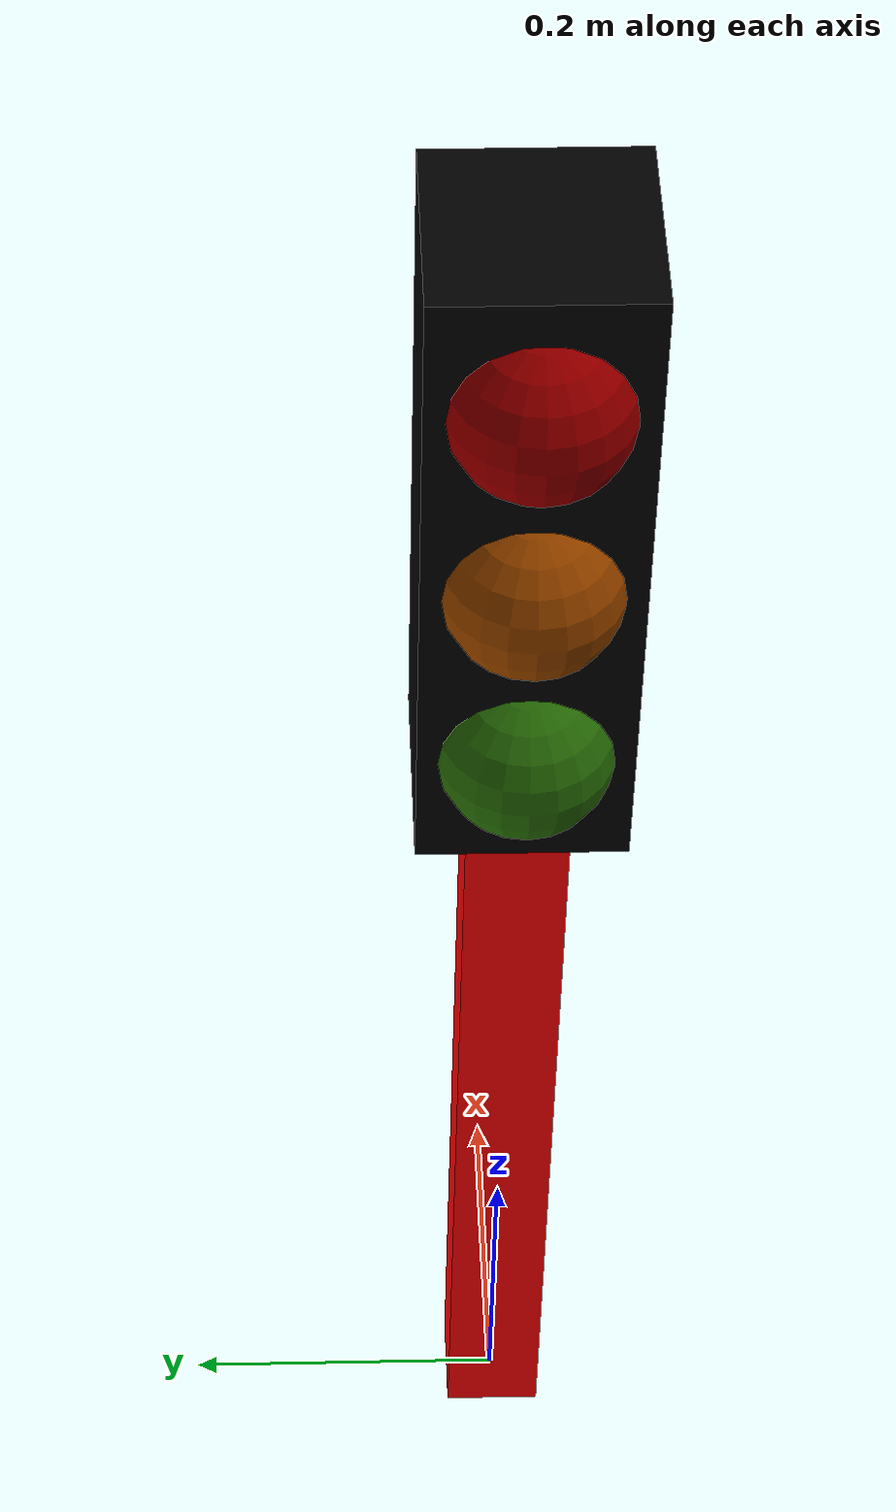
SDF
<?xml version='1.0'?>
<sdf version='1.6'>
  <model name='traffic_light'>
<static>True</static>
    <link name='base_link'>
      <inertial>
        <mass>100</mass>
        <inertia>
          <ixx>0.166667</ixx>
          <ixy>0</ixy>
          <ixz>0</ixz>
          <iyy>0.166667</iyy>
          <iyz>0</iyz>
          <izz>0.166667</izz>
        </inertia>
      </inertial>
      <pose frame=''>0 -2e-06 0 0 -0 0</pose>
      <visual name='visual'>
        <pose frame=''>0 0 0.3 0 -0 0</pose>
       <geometry>
          <box>
           <size>0.06 0.06 0.6</size>
          </box>
        </geometry>
  <material>
    <ambient>0.3607 0.2 0.0901 1</ambient>
    <diffuse>1 0 0 1</diffuse>
    <specular>0.1 0.1 0.1 1</specular>
    <emissive>0 0 0 0</emissive>
  </material>
        <transparency>0</transparency>
        <cast_shadows>1</cast_shadows>
      </visual>
      <collision name='collision'>
        <laser_retro>0</laser_retro>
        <max_contacts>10</max_contacts>
        <pose frame=''>0 0 0.6 0 -0 0</pose>
       <geometry>
          <box>
            <size>0.06 0.06 0.6</size>
          </box>
        </geometry>

        <surface>
          <friction>
            <ode>
              <mu>1</mu>
              <mu2>1</mu2>
              <fdir1>0 0 0</fdir1>
              <slip1>0</slip1>
              <slip2>0</slip2>
            </ode>
            <torsional>
              <coefficient>1</coefficient>
              <patch_radius>0</patch_radius>
              <surface_radius>0</surface_radius>
              <use_patch_radius>1</use_patch_radius>
              <ode>
                <slip>0</slip>
              </ode>
            </torsional>
          </friction>
          <bounce>
            <restitution_coefficient>0</restitution_coefficient>
            <threshold>1e+06</threshold>
          </bounce>
          <contact>
            <collide_without_contact>0</collide_without_contact>
            <collide_without_contact_bitmask>1</collide_without_contact_bitmask>
            <collide_bitmask>1</collide_bitmask>
            <ode>
              <soft_cfm>0</soft_cfm>
              <soft_erp>0.2</soft_erp>
              <kp>1e+13</kp>
              <kd>1</kd>
              <max_vel>0.01</max_vel>
              <min_depth>0</min_depth>
            </ode>
            <bullet>
              <split_impulse>1</split_impulse>
              <split_impulse_penetration_threshold>-0.01</split_impulse_penetration_threshold>
              <soft_cfm>0</soft_cfm>
              <soft_erp>0.2</soft_erp>
              <kp>1e+13</kp>
              <kd>1</kd>
            </bullet>
          </contact>
        </surface>
      </collision>
    </link>
<link name='traffic_light'>
      <inertial>
        <mass>100</mass>
        <inertia>
          <ixx>0.166667</ixx>
          <ixy>0</ixy>
          <ixz>0</ixz>
          <iyy>0.166667</iyy>
          <iyz>0</iyz>
          <izz>0.166667</izz>
        </inertia>
      </inertial>
      <pose frame=''>0 -2e-06 0 0 -0 0</pose>
      <visual name='visual'>
        <pose frame=''>0 0 0.8 0 0 0</pose>
       <geometry>
          <box>
           <size>0.12 0.12 0.4</size>
          </box>
        </geometry>
  <material>
    <ambient>0 0 0 1</ambient>
    <diffuse>0 0 0 1</diffuse>
    <specular>0.1 0.1 0.1 1</specular>
    <emissive>0 0 0 0</emissive>
  </material>
        <transparency>0</transparency>
        <cast_shadows>1</cast_shadows>
      </visual>
      <collision name='collision'>
        <laser_retro>0</laser_retro>
        <max_contacts>10</max_contacts>
        <pose frame=''>0 0 0.8 0 0 0</pose>
       <geometry>
          <box>
            <size>0.12 0.12 0.4</size>
          </box>
        </geometry>

        <surface>
          <friction>
            <ode>
              <mu>1</mu>
              <mu2>1</mu2>
              <fdir1>0 0 0</fdir1>
              <slip1>0</slip1>
              <slip2>0</slip2>
            </ode>
            <torsional>
              <coefficient>1</coefficient>
              <patch_radius>0</patch_radius>
              <surface_radius>0</surface_radius>
              <use_patch_radius>1</use_patch_radius>
              <ode>
                <slip>0</slip>
              </ode>
            </torsional>
          </friction>
          <bounce>
            <restitution_coefficient>0</restitution_coefficient>
            <threshold>1e+06</threshold>
          </bounce>
          <contact>
            <collide_without_contact>0</collide_without_contact>
            <collide_without_contact_bitmask>1</collide_without_contact_bitmask>
            <collide_bitmask>1</collide_bitmask>
            <ode>
              <soft_cfm>0</soft_cfm>
              <soft_erp>0.2</soft_erp>
              <kp>1e+13</kp>
              <kd>1</kd>
              <max_vel>0.01</max_vel>
              <min_depth>0</min_depth>
            </ode>
            <bullet>
              <split_impulse>1</split_impulse>
              <split_impulse_penetration_threshold>-0.01</split_impulse_penetration_threshold>
              <soft_cfm>0</soft_cfm>
              <soft_erp>0.2</soft_erp>
              <kp>1e+13</kp>
              <kd>1</kd>
            </bullet>
          </contact>
        </surface>
      </collision>
    </link>

      <joint type="fixed" name="traffic_box_joint">
        <pose>0 0 0 0 0 0</pose>
        <child>traffic_light</child>
        <parent>base_link</parent>
        <axis>
          <xyz>0 0 0</xyz>
        </axis>
      </joint>

    <link name='red'>
        <pose>-0.05 0 0.925 0 0 0</pose>
        <light name='lamp' type='spot'>
          <pose>0 0 0.0 0 1.5707 0</pose>
          <attenuation>
            <range>30</range>
            <linear>0.05</linear>
          </attenuation>
          <spot>
            <inner_angle>0.3</inner_angle>
            <outer_angle>0.35</outer_angle>
            <falloff>1</falloff>
          </spot>
          <direction>0 0 -1</direction>
        </light>
        <visual name='lamp'>
          <geometry>
            <sphere>
              <radius>0.05</radius>
            </sphere>
          </geometry>
          <transparency>0.4</transparency>
          <material>
            <ambient>1 0 0 1</ambient>
          </material>
        </visual>
      </link>

    <link name='orange'>
        <pose>-0.05 0 0.8 0 0 0</pose>
        <light name='lamp' type='spot'>
          <pose>0 0 0.0 0 1.5707 0</pose>
          <attenuation>
            <range>30</range>
            <linear>0.05</linear>
          </attenuation>
          <spot>
            <inner_angle>0.3</inner_angle>
            <outer_angle>0.35</outer_angle>
            <falloff>1</falloff>
          </spot>
          <direction>0 0 -1</direction>
        </light>
        <visual name='lamp'>
          <geometry>
            <sphere>
              <radius>0.05</radius>
            </sphere>
          </geometry>
          <transparency>0.4</transparency>
          <material>
            <ambient>1 0.4705 0 1</ambient>
          </material>
        </visual>
      </link>

    <link name='green'>
        <pose>-0.05 0 0.675 0 0 0</pose>
        <light name='lamp' type='spot'>
          <pose>0 0 0.0 0 1.5707 0</pose>
          <attenuation>
            <range>30</range>
            <linear>0.05</linear>
          </attenuation>
          <spot>
            <inner_angle>0.3</inner_angle>
            <outer_angle>0.35</outer_angle>
            <falloff>1</falloff>
          </spot>
          <direction>0 0 -1</direction>
        </light>
        <visual name='lamp'>
          <geometry>
            <sphere>
              <radius>0.05</radius>
            </sphere>
          </geometry>
          <transparency>0.4</transparency>
          <material>
            <ambient>0.298 0.733 0.09 1</ambient>
          </material>
        </visual>
      </link>

      <plugin name='light_control' filename='libLedPlugin.so'>
        <enable>true</enable>

	<light>
          <id>green/lamp</id>
	  <duration>3</duration>
          <interval>6</interval>
	  <color>0.298 0.733 0.09</color>
          <enable>true</enable>
        </light>

	 <light>
          <id>orange/lamp</id>
          <duration>2</duration>
          <interval>10</interval>
	  <color>1 0.4705 0</color>
          <enable>true</enable>
        </light>

        <light>
          <id>red/lamp</id>
          <duration>3</duration>
          <interval>11</interval>
	  <color>0.902 0 0</color>
          <enable>true</enable>
        </light>

    </plugin>
    <static>0</static>
    <allow_auto_disable>1</allow_auto_disable>
  </model>
</sdf>
